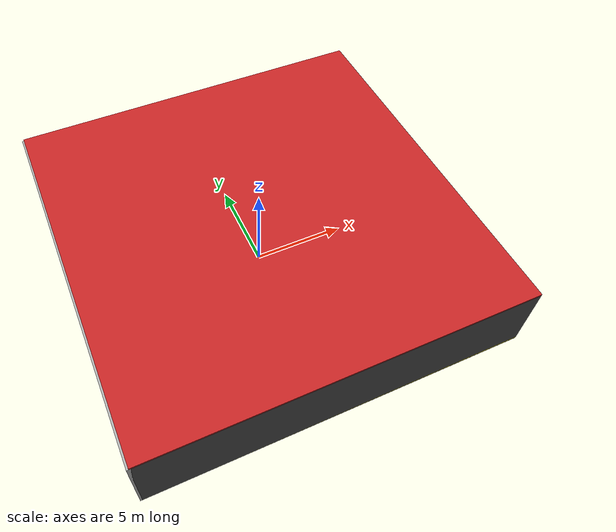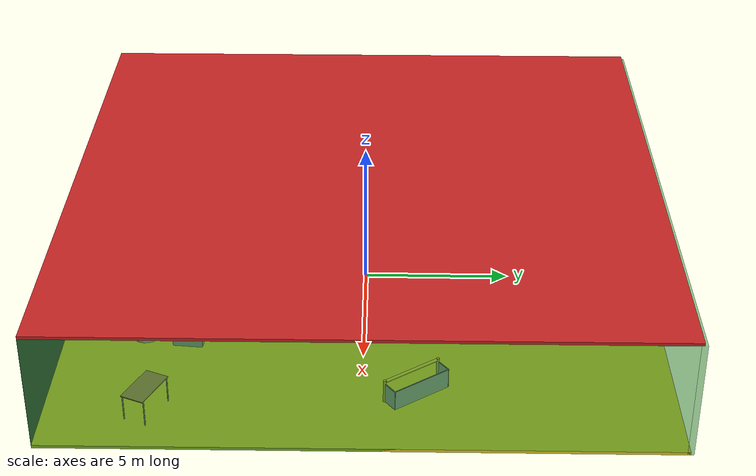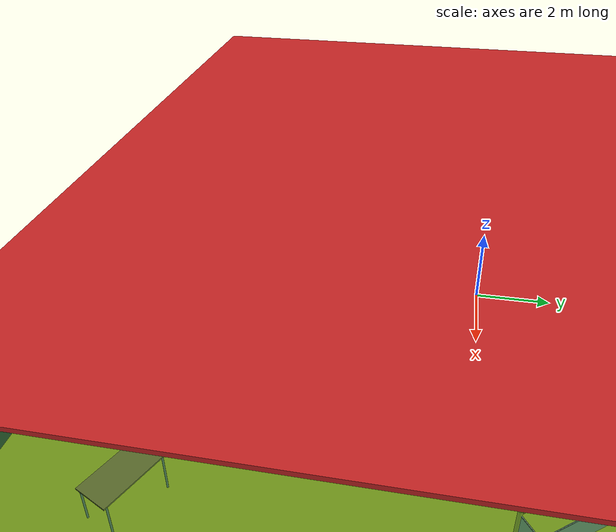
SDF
<sdf version="1.4">
 <world name="default">
  <physics type="ode">
   <max_step_size>0.001</max_step_size>
   <real_time_factor>1</real_time_factor>
   <real_time_update_rate>1000</real_time_update_rate>
   <gravity>0 0 -9.8</gravity>
  </physics>
  <scene><ambient>0.4 0.4 0.4 1</ambient><background>0.7 0.7 0.7 1</background><shadows>1</shadows></scene>
  <model name="Surrounding">
   <static>1</static>
   <link name="Ceiling">
    <collision name="Ceiling_Collision"><geometry><box><size>20 20 0.1</size></box></geometry></collision>
    <visual name="Ceiling_Visual">
     <geometry><box><size>20 20 0.1</size></box></geometry>
     <material>
      <script><uri>file://media/materials/scripts/gazebo.material</uri><name>Gazebo/Red</name></script>
     </material>
    </visual>
    <pose>0 0 4.05 0 0 0</pose>
   </link>
   <link name="Wall_South">
    <collision name="Wall_South_Collision">
     <geometry><box><size>20 0 4</size></box></geometry>
     <pose>0 0 2 0 -0 0</pose>
    </collision>
    <visual name="Wall_South_Visual">
     <pose>0 0 2 0 -0 0</pose>
     <geometry><box><size>20 0 4</size></box></geometry>
     <material>
      <script><uri>file://media/materials/scripts/gazebo.material</uri><name>Gazebo/DarkGrey</name></script>
     </material>
    </visual>
    <velocity_decay><linear>0</linear><angular>0</angular></velocity_decay>
    <pose>0 -10 0 0 -0 0</pose>
   </link>
   <link name="Wall_East">
    <collision name="Wall_21_Collision">
     <geometry><box><size>20 0 4</size></box></geometry>
     <pose>0 0 2 0 -0 0</pose>
    </collision>
    <visual name="Wall_21_Visual">
     <pose>0 0 2 0 -0 0</pose>
     <geometry><box><size>20 0 4</size></box></geometry>
     <material>
      <script><uri>file://media/materials/scripts/gazebo.material</uri><name>Gazebo/GreenTransparent</name></script>
     </material>
    </visual>
    <velocity_decay><linear>0</linear><angular>0</angular></velocity_decay>
    <pose>10 0 0 0 -0 1.5708</pose>
   </link>
   <link name="Wall_North">
    <collision name="Wall_22_Collision">
     <geometry><box><size>20 0.2 4</size></box></geometry>
     <pose>0 0 2 0 -0 0</pose>
    </collision>
    <visual name="Wall_22_Visual">
     <pose>0 0 2 0 -0 0</pose>
     <geometry><box><size>20 0.2 4</size></box></geometry>
     <material>
      <script><uri>file://media/materials/scripts/gazebo.material</uri><name>Gazebo/GreenTransparent</name></script>
     </material>
    </visual>
    <velocity_decay><linear>0</linear><angular>0</angular></velocity_decay>
    <pose>0 10 0 0 -0 0</pose>
   </link>
   <link name="Wall_West">
    <collision name="Wall_23_Collision">
     <geometry><box><size>20 0.2 4</size></box></geometry>
     <pose>0 0 2 0 -0 0</pose>
    </collision>
    <visual name="Wall_23_Visual">
     <pose>0 0 2 0 -0 0</pose>
     <geometry><box><size>20 0.2 4</size></box></geometry>
     <material>
      <script><uri>file://media/materials/scripts/gazebo.material</uri><name>Gazebo/JointAnchor</name></script>
     </material>
    </visual>
    <velocity_decay><linear>0</linear><angular>0</angular></velocity_decay>
    <pose>-10 0 0 0 0 -1.5708</pose>
   </link>
   <link name="Ground_link">
    <collision name="collision">
     <pose>0 0 .05 0 -0 0</pose>
     <geometry><box><size>20 20 0.1</size></box></geometry>
    </collision>
    <visual name="visual">
     <pose>0 0 .05 0 -0 0</pose>
     <geometry><box><size>20 20 0.1</size></box></geometry>
     <material>
      <script><uri>file://media/materials/scripts/gazebo.material</uri><name>Gazebo/YellowGlow</name></script>
     </material>
    </visual>
   </link>
   <static>1</static>
  </model>
  <spherical_coordinates>
   <surface_model>EARTH_WGS84</surface_model>
   <latitude_deg>0</latitude_deg>
   <longitude_deg>0</longitude_deg>
   <elevation>0</elevation>
   <heading_deg>0</heading_deg>
  </spherical_coordinates>
  <light name="lightball_0" type="diffuse">
   <diffuse>0.8 0.8 0.8 1</diffuse>
   <specular>0.2 0.2 0.2 1</specular>
   <attenuation>
    <range>100</range>
    <constant>0.7</constant>
    <linear>0.01</linear>
    <quadratic>0.001</quadratic>
   </attenuation>
   <direction>-0.5 0.1 -0.9</direction>
   <pose>-6.79720930588 5.33181794128 1.15957169867 0 0 0</pose>
  </light>
  <light name="lightball_1" type="diffuse">
   <diffuse>0.8 0.8 0.8 1</diffuse>
   <specular>0.2 0.2 0.2 1</specular>
   <attenuation>
    <range>100</range>
    <constant>0.7</constant>
    <linear>0.01</linear>
    <quadratic>0.001</quadratic>
   </attenuation>
   <direction>-0.5 0.1 -0.9</direction>
   <pose>-8.28407929258 -5.87542470033 2.42017419421 0 0 0</pose>
  </light>
  <light name="lightball_2" type="diffuse">
   <diffuse>0.8 0.8 0.8 1</diffuse>
   <specular>0.2 0.2 0.2 1</specular>
   <attenuation>
    <range>100</range>
    <constant>0.7</constant>
    <linear>0.01</linear>
    <quadratic>0.001</quadratic>
   </attenuation>
   <direction>-0.5 0.1 -0.9</direction>
   <pose>-8.77006984932 -9.13902674772 3.21066853725 0 0 0</pose>
  </light>
  <light name="lightball_3" type="diffuse">
   <diffuse>0.8 0.8 0.8 1</diffuse>
   <specular>0.2 0.2 0.2 1</specular>
   <attenuation>
    <range>100</range>
    <constant>0.7</constant>
    <linear>0.01</linear>
    <quadratic>0.001</quadratic>
   </attenuation>
   <direction>-0.5 0.1 -0.9</direction>
   <pose>1.6142478042 9.20054962843 3.65047041756 0 0 0</pose>
  </light>
  <light name="lightball_4" type="diffuse">
   <diffuse>0.8 0.8 0.8 1</diffuse>
   <specular>0.2 0.2 0.2 1</specular>
   <attenuation>
    <range>100</range>
    <constant>0.7</constant>
    <linear>0.01</linear>
    <quadratic>0.001</quadratic>
   </attenuation>
   <direction>-0.5 0.1 -0.9</direction>
   <pose>-0.597176290371 -5.16559101418 3.07603092713 0 0 0</pose>
  </light>
  <light name="lightball_5" type="diffuse">
   <diffuse>0.8 0.8 0.8 1</diffuse>
   <specular>0.2 0.2 0.2 1</specular>
   <attenuation>
    <range>100</range>
    <constant>0.7</constant>
    <linear>0.01</linear>
    <quadratic>0.001</quadratic>
   </attenuation>
   <direction>-0.5 0.1 -0.9</direction>
   <pose>5.53173008641 6.10474431649 2.22107836298 0 0 0</pose>
  </light>
  <light name="lightball_6" type="diffuse">
   <diffuse>0.8 0.8 0.8 1</diffuse>
   <specular>0.2 0.2 0.2 1</specular>
   <attenuation>
    <range>100</range>
    <constant>0.7</constant>
    <linear>0.01</linear>
    <quadratic>0.001</quadratic>
   </attenuation>
   <direction>-0.5 0.1 -0.9</direction>
   <pose>2.00136711756 0.32100349852 2.19835059378 0 0 0</pose>
  </light>
  <light name="lightball_7" type="diffuse">
   <diffuse>0.8 0.8 0.8 1</diffuse>
   <specular>0.2 0.2 0.2 1</specular>
   <attenuation>
    <range>100</range>
    <constant>0.7</constant>
    <linear>0.01</linear>
    <quadratic>0.001</quadratic>
   </attenuation>
   <direction>-0.5 0.1 -0.9</direction>
   <pose>-3.4273321791 -0.103780655392 1.43552711477 0 0 0</pose>
  </light>
  <light name="lightball_8" type="diffuse">
   <diffuse>0.8 0.8 0.8 1</diffuse>
   <specular>0.2 0.2 0.2 1</specular>
   <attenuation>
    <range>100</range>
    <constant>0.7</constant>
    <linear>0.01</linear>
    <quadratic>0.001</quadratic>
   </attenuation>
   <direction>-0.5 0.1 -0.9</direction>
   <pose>9.09177098486 1.8248342934 2.05266356122 0 0 0</pose>
  </light>
  <include><uri>model://cabinet</uri><pose>-4.07813550053 0.760966386711 0 0 0 0.0731535275218</pose></include>
  <include><uri>model://cabinet</uri><pose>-4.69294172603 4.52287820163 0 0 0 2.47797503853</pose></include>
  <include>
   <uri>model://robocup_3Dsim_goal</uri>
   <pose>-1.50383375396 -4.60163380246 0 0 0 1.40749870327</pose>
  </include>
  <include>
   <uri>model://textured_shapes</uri>
   <pose>4.03928139795 -7.28710766048 0 0 0 3.03915201124</pose>
  </include>
  <include>
   <uri>model://construction_cone</uri>
   <pose>3.75520518151 -1.80667164975 0 0 0 1.27883112008</pose>
  </include>
  <include><uri>model://table</uri><pose>8.17027142907 -6.73723065292 0 0 0 2.71957232347</pose></include>
  <include>
   <uri>model://robocup_3Dsim_goal</uri>
   <pose>6.97236877947 1.56907974261 0 0 0 0.629617733674</pose>
  </include>
 </world>
</sdf>

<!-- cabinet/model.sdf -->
<sdf version="1.5">
  <model name="cabinet">
    <static>true</static>
    <link name="cabinet_bottom_plate">
      <inertial>
        <pose>0 0 -1 0 0 0</pose>
        <inertia>
          <ixx>2.050000</ixx>
          <ixy>0</ixy>
          <ixz>0</ixz>
          <iyy>2.050000</iyy>
          <iyz>0</iyz>
          <izz>2.050000</izz>
        </inertia>
        <mass>25.000000</mass>
      </inertial>
      <collision name="cabinet_bottom_plate_geom">
        <pose>0 0 0.010000 0 0 0</pose>
        <geometry>
          <box>
            <size>0.450000 0.450000 0.020000</size>
          </box>
        </geometry>
      </collision>
      <visual name="cabinet_bottom_plate_geom_visual">
        <pose>0 0 0.010000 0 0 0</pose>
        <geometry>
          <box>
            <size>0.450000 0.450000 0.020000</size>
          </box>
        </geometry>
        <material>
          <script>
            <uri>model://media/materials/scripts/gazebo.material</uri>
            <name>Gazebo/Wood</name>
          </script>
        </material>
      </visual>
      <collision name="cabinet_bottom_plate_geom_cabinet_back_plate">
        <pose>0.235000 0 0.510000 0 0 0</pose>
        <geometry>
          <box>
            <size>0.020000 0.450000 1.020000</size>
          </box>
        </geometry>
      </collision>
      <visual name="cabinet_bottom_plate_geom_cabinet_back_plate_visual">
        <pose>0.235000 0 0.510000 0 0 0</pose>
        <geometry>
          <box>
            <size>0.020000 0.450000 1.020000</size>
          </box>
        </geometry>
        <material>
          <script>
            <uri>model://media/materials/scripts/gazebo.material</uri>
            <name>Gazebo/Wood</name>
          </script>
        </material>
      </visual>
      <collision name="cabinet_bottom_plate_geom_cabinet_left_plate">
        <pose>0 0.235000 0.510000 0 0 0</pose>
        <geometry>
          <box>
            <size>0.450000 0.020000 1.020000</size>
          </box>
        </geometry>
      </collision>
      <visual name="cabinet_bottom_plate_geom_cabinet_left_plate_visual">
        <pose>0 0.235000 0.510000 0 0 0</pose>
        <geometry>
          <box>
            <size>0.450000 0.020000 1.020000</size>
          </box>
        </geometry>
        <material>
          <script>
            <uri>model://media/materials/scripts/gazebo.material</uri>
            <name>Gazebo/Wood</name>
          </script>
        </material>
      </visual>
      <collision name="cabinet_bottom_plate_geom_cabinet_middle_plate">
        <pose>0 0 0.510000 0 0 0</pose>
        <geometry>
          <box>
            <size>0.450000 0.450000 0.020000</size>
          </box>
        </geometry>
      </collision>
      <visual name="cabinet_bottom_plate_geom_cabinet_middle_plate_visual">
        <pose>0 0 0.510000 0 0 0</pose>
        <geometry>
          <box>
            <size>0.450000 0.450000 0.020000</size>
          </box>
        </geometry>
        <material>
          <script>
            <uri>model://media/materials/scripts/gazebo.material</uri>
            <name>Gazebo/Wood</name>
          </script>
        </material>
      </visual>
      <collision name="cabinet_bottom_plate_geom_cabinet_right_plate">
        <pose>0 -0.235000 0.510000 0 0 0</pose>
        <geometry>
          <box>
            <size>0.450000 0.020000 1.020000</size>
          </box>
        </geometry>
      </collision>
      <visual name="cabinet_bottom_plate_geom_cabinet_right_plate_visual">
        <pose>0 -0.235000 0.510000 0 0 0</pose>
        <geometry>
          <box>
            <size>0.450000 0.020000 1.020000</size>
          </box>
        </geometry>
        <material>
          <script>
            <uri>model://media/materials/scripts/gazebo.material</uri>
            <name>Gazebo/Wood</name>
          </script>
        </material>
      </visual>
      <collision name="cabinet_bottom_plate_geom_cabinet_top_plate">
        <pose>0 0 1.010000 0 0 0</pose>
        <geometry>
          <box>
            <size>0.450000 0.450000 0.020000</size>
          </box>
        </geometry>
      </collision>
      <visual name="cabinet_bottom_plate_geom_cabinet_top_plate_visual">
        <pose>0 0 1.010000 0 0 0</pose>
        <geometry>
          <box>
            <size>0.450000 0.450000 0.020000</size>
          </box>
        </geometry>
        <material>
          <script>
            <uri>model://media/materials/scripts/gazebo.material</uri>
            <name>Gazebo/Wood</name>
          </script>
        </material>
      </visual>
    </link>
  </model>
</sdf>

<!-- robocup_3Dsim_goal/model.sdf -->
<sdf version="1.5">
  <model name="robocup_3d_goal">
    <static>true</static>
    <link name="left_post">
      <pose>0 1.05 0.45 0 0 0</pose>
      <collision name="collision">
        <geometry>
          <cylinder>
            <radius>0.05</radius>
            <length>0.9</length>
          </cylinder>
        </geometry>
      </collision>
      <visual name="visual">
        <geometry>
          <cylinder>
            <radius>0.05</radius>
            <length>0.9</length>
          </cylinder>
        </geometry>
        <material>
          <script>
            <uri>file://media/materials/scripts/gazebo.material</uri>
            <name>Gazebo/ZincYellow</name>
          </script>
        </material>
      </visual>
    </link>
    <link name="left_support_horiz_lower">
      <pose>0.30 1.05 0.01 0 0 0</pose>
      <collision name="collision">
        <geometry>
          <box>
            <size>0.50 0.02 0.02</size>
          </box>
        </geometry>
      </collision>
      <visual name="visual">
        <geometry>
          <box>
            <size>0.50 0.02 0.02</size>
          </box>
        </geometry>
        <material>
          <script>
            <uri>file://media/materials/scripts/gazebo.material</uri>
            <name>Gazebo/White</name>
          </script>
        </material>
      </visual>
    </link>
    <link name="left_support_horiz_upper">
      <pose>0.30 1.05 0.79 0 0 0</pose>
      <collision name="collision">
        <geometry>
          <box>
            <size>0.50 0.02 0.02</size>
          </box>
        </geometry>
      </collision>
      <visual name="visual">
        <geometry>
          <box>
            <size>0.50 0.02 0.02</size>
          </box>
        </geometry>
        <material>
          <script>
            <uri>file://media/materials/scripts/gazebo.material</uri>
            <name>Gazebo/White</name>
          </script>
        </material>
      </visual>
    </link>
    <link name="left_support_vertical">
      <pose>0.56 1.05 0.4 0 1.5708 0</pose>
      <collision name="collision">
        <geometry>
          <box>
            <size>0.80 0.02 0.02</size>
          </box>
        </geometry>
      </collision>
      <visual name="visual">
        <geometry>
          <box>
            <size>0.80 0.02 0.02</size>
          </box>
        </geometry>
        <material>
          <script>
            <uri>file://media/materials/scripts/gazebo.material</uri>
            <name>Gazebo/White</name>
          </script>
        </material>
      </visual>
    </link>
    <link name="right_support_horiz_lower">
      <pose>0.30 -1.05 0.01 0 0 0</pose>
      <collision name="collision">
        <geometry>
          <box>
            <size>0.50 0.02 0.02</size>
          </box>
        </geometry>
      </collision>
      <visual name="visual">
        <geometry>
          <box>
            <size>0.50 0.02 0.02</size>
          </box>
        </geometry>
        <material>
          <script>
            <uri>file://media/materials/scripts/gazebo.material</uri>
            <name>Gazebo/White</name>
          </script>
        </material>
      </visual>
    </link>
    <link name="right_support_horiz_upper">
      <pose>0.30 -1.05 0.79 0 0 0</pose>
      <collision name="collision">
        <geometry>
          <box>
            <size>0.50 0.02 0.02</size>
          </box>
        </geometry>
      </collision>
      <visual name="visual">
        <geometry>
          <box>
            <size>0.50 0.02 0.02</size>
          </box>
        </geometry>
        <material>
          <script>
            <uri>file://media/materials/scripts/gazebo.material</uri>
            <name>Gazebo/White</name>
          </script>
        </material>
      </visual>
    </link>
    <link name="right_support_vertical">
      <pose>0.56 -1.05 0.4 0 1.5708 0</pose>
      <collision name="collision">
        <geometry>
          <box>
            <size>0.80 0.02 0.02</size>
          </box>
        </geometry>
      </collision>
      <visual name="visual">
        <geometry>
          <box>
            <size>0.80 0.02 0.02</size>
          </box>
        </geometry>
        <material>
          <script>
            <uri>file://media/materials/scripts/gazebo.material</uri>
            <name>Gazebo/White</name>
          </script>
        </material>
      </visual>
    </link>
    <link name="center_support_horiz_lower">
      <pose>0.56 0 0.01 0 1.5708 0</pose>
      <collision name="collision">
        <geometry>
          <box>
            <size>0.02 2.08 0.02</size>
          </box>
        </geometry>
      </collision>
      <visual name="visual">
        <geometry>
          <box>
            <size>0.02 2.08 0.02</size>
          </box>
        </geometry>
        <material>
          <script>
            <uri>file://media/materials/scripts/gazebo.material</uri>
            <name>Gazebo/White</name>
          </script>
        </material>
      </visual>
    </link>
    <link name="center_support_horiz_upper">
      <pose>0.56 0 0.79 0 1.5708 0</pose>
      <collision name="collision">
        <geometry>
          <box>
            <size>0.02 2.08 0.02</size>
          </box>
        </geometry>
      </collision>
      <visual name="visual">
        <geometry>
          <box>
            <size>0.02 2.08 0.02</size>
          </box>
        </geometry>
        <material>
          <script>
            <uri>file://media/materials/scripts/gazebo.material</uri>
            <name>Gazebo/White</name>
          </script>
        </material>
      </visual>
    </link>
    <link name="right_post">
      <pose>0 -1.05 0.45 0 0 0</pose>
      <collision name="collision">
        <geometry>
          <cylinder>
            <radius>0.05</radius>
            <length>0.9</length>
          </cylinder>
        </geometry>
      </collision>
      <visual name="visual">
        <geometry>
          <cylinder>
            <radius>0.05</radius>
            <length>0.9</length>
          </cylinder>
        </geometry>
        <material>
          <script>
            <uri>file://media/materials/scripts/gazebo.material</uri>
            <name>Gazebo/ZincYellow</name>
          </script>
        </material>
      </visual>
    </link>
    <link name="crossbar">
      <pose>0 0 0.85 1.57 1.57 0</pose>
      <collision name="collision">
        <geometry>
          <cylinder>
            <radius>0.05</radius>
            <length>2.0</length>
          </cylinder>
        </geometry>
      </collision>
      <visual name="visual">
        <geometry>
          <cylinder>
            <radius>0.05</radius>
            <length>2.0</length>
          </cylinder>
        </geometry>
        <material>
          <script>
            <uri>file://media/materials/scripts/gazebo.material</uri>
            <name>Gazebo/ZincYellow</name>
          </script>
        </material>
      </visual>
    </link>
    <link name="center_net">
      <pose>0.56 0 0.40 0 0 0</pose>
      <collision name="collision">
        <geometry>
          <box>
            <size>0.01 2.1 0.80</size>
          </box>
        </geometry>
      </collision>
      <visual name="visual">
        <geometry>
          <box>
            <size>0.01 2.1 0.80</size>
          </box>
        </geometry>
        <material>
          <script>
            <uri>model://../model_source/models/robocup09_spl_field/materials/scripts/</uri>
            <uri>model://../model_source/models/robocup09_spl_field/materials/textures/</uri>
            <name>RoboCup/Net</name>
          </script>
        </material>
      </visual>
    </link>
    <link name="left_net">
      <pose>0.30 1.05 0.40 0 0 0</pose>
      <collision name="collision">
        <geometry>
          <box>
            <size>0.50 0.01 0.76</size>
          </box>
        </geometry>
      </collision>
      <visual name="visual">
        <geometry>
          <box>
            <size>0.50 0.01 0.76</size>
          </box>
        </geometry>
        <material>
          <script>
            <uri>model://../model_source/models/robocup09_spl_field/materials/scripts/</uri>
            <uri>model://../model_source/models/robocup09_spl_field/materials/textures/</uri>
            <name>RoboCup/Net</name>
          </script>
        </material>
      </visual>
    </link>
    <link name="right_net">
      <pose>0.30 -1.05 0.40 0 0 0</pose>
      <collision name="collision">
        <geometry>
          <box>
            <size>0.50 0.01 0.76</size>
          </box>
        </geometry>
      </collision>
      <visual name="visual">
        <geometry>
          <box>
            <size>0.50 0.01 0.76</size>
          </box>
        </geometry>
        <material>
          <script>
            <uri>model://../model_source/models/robocup09_spl_field/materials/scripts/</uri>
            <uri>model://../model_source/models/robocup09_spl_field/materials/textures/</uri>
            <name>RoboCup/Net</name>
          </script>
        </material>
      </visual>
    </link>
  </model>
</sdf>

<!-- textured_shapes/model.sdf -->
<sdf version="1.6">
  <model name="textured_shapes">
    <pose>0 0 0.5 0 0 0</pose>
    <link name="box">
      <pose>0 -1.5 0 0 0 0</pose>
      <collision name="collision">
        <geometry>
          <box>
            <size>1 1 1</size>
          </box>
        </geometry>
      </collision>
      <visual name="visual">
        <geometry>
          <box>
            <size>1 1 1</size>
          </box>
        </geometry>
        <material>
          <script>
            <uri>model://../model_source/models/textured_shapes/materials/scripts</uri>
            <uri>model://../model_source/models/textured_shapes/materials/textures</uri>
            <name>TexturedShape/Squares</name>
          </script>
        </material>
      </visual>
    </link>
    <link name="sphere">
      <collision name="collision">
        <geometry>
          <sphere>
            <radius>0.5</radius>
          </sphere>
        </geometry>
      </collision>
      <visual name="visual">
        <geometry>
          <sphere>
            <radius>0.5</radius>
          </sphere>
        </geometry>
        <material>
          <script>
            <uri>model://../model_source/models/textured_shapes/materials/scripts</uri>
            <uri>model://../model_source/models/textured_shapes/materials/textures</uri>
            <name>TexturedShape/Squares</name>
          </script>
        </material>
      </visual>
    </link>
    <link name="cylinder">
      <pose>0 1.5 0 0 0 0</pose>
      <collision name="collision">
        <geometry>
          <cylinder>
            <radius>0.5</radius>
            <length>1</length>
          </cylinder>
        </geometry>
      </collision>
      <visual name="visual">
        <geometry>
          <cylinder>
            <radius>0.5</radius>
            <length>1</length>
          </cylinder>
        </geometry>
        <material>
          <script>
            <uri>model://../model_source/models/textured_shapes/materials/scripts</uri>
            <uri>model://../model_source/models/textured_shapes/materials/textures</uri>
            <name>TexturedShape/Squares</name>
          </script>
        </material>
      </visual>
    </link>
  </model>
</sdf>

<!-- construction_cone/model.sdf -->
<sdf version="1.5">
  <model name="Construction Cone">
    <link name="link">
      <collision name="collision">
        <geometry>
          <mesh>
            <scale>10 10 10</scale>
            <uri>file://isr-testbed/construction_cone/meshes/construction_cone.dae</uri>
          </mesh>
        </geometry>
      </collision>
      <visual name="visual">
        <geometry>
          <mesh>
            <scale>10 10 10</scale>
            <uri>file://isr-testbed/construction_cone/meshes/construction_cone.dae</uri>
          </mesh>
        </geometry>
      </visual>
    </link>
  </model>
</sdf>

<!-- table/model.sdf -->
<sdf version="1.5">
  <model name="table">
    <static>true</static>
    <link name="link">
      <collision name="surface">
        <pose>0 0 1.0 0 0 0</pose>
        <geometry>
          <box>
            <size>1.5 0.8 0.03</size>
          </box>
        </geometry>
        <surface>
          <friction>
            <ode>
              <mu>0.6</mu>
              <mu2>0.6</mu2>
            </ode>
          </friction>
        </surface>
      </collision>
      <visual name="visual1">
        <pose>0 0 1.0 0 0 0</pose>
        <geometry>
          <box>
            <size>1.5 0.8 0.03</size>
          </box>
        </geometry>
        <material>
          <script>
            <uri>model://media/materials/scripts/gazebo.material</uri>
            <name>Gazebo/Wood</name>
          </script>
        </material>
      </visual>
      <collision name="front_left_leg">
        <pose>0.68 0.38 0.5 0 0 0</pose>
        <geometry>
          <cylinder>
            <radius>0.02</radius>
            <length>1.0</length>
          </cylinder>
        </geometry>
      </collision>
      <visual name="front_left_leg">
        <pose>0.68 0.38 0.5 0 0 0</pose>
        <geometry>
          <cylinder>
            <radius>0.02</radius>
            <length>1.0</length>
          </cylinder>
        </geometry>
        <material>
          <script>
            <uri>model://media/materials/scripts/gazebo.material</uri>
            <name>Gazebo/Grey</name>
          </script>
        </material>
      </visual>
      <collision name="front_right_leg">
        <pose>0.68 -0.38 0.5 0 0 0</pose>
        <geometry>
          <cylinder>
            <radius>0.02</radius>
            <length>1.0</length>
          </cylinder>
        </geometry>
      </collision>
      <visual name="front_right_leg">
        <pose>0.68 -0.38 0.5 0 0 0</pose>
        <geometry>
          <cylinder>
            <radius>0.02</radius>
            <length>1.0</length>
          </cylinder>
        </geometry>
        <material>
          <script>
            <uri>model://media/materials/scripts/gazebo.material</uri>
            <name>Gazebo/Grey</name>
          </script>
        </material>
      </visual>
      <collision name="back_right_leg">
        <pose>-0.68 -0.38 0.5 0 0 0</pose>
        <geometry>
          <cylinder>
            <radius>0.02</radius>
            <length>1.0</length>
          </cylinder>
        </geometry>
      </collision>
      <visual name="back_right_leg">
        <pose>-0.68 -0.38 0.5 0 0 0</pose>
        <geometry>
          <cylinder>
            <radius>0.02</radius>
            <length>1.0</length>
          </cylinder>
        </geometry>
        <material>
          <script>
            <uri>model://media/materials/scripts/gazebo.material</uri>
            <name>Gazebo/Grey</name>
          </script>
        </material>
      </visual>
      <collision name="back_left_leg">
        <pose>-0.68 0.38 0.5 0 0 0</pose>
        <geometry>
          <cylinder>
            <radius>0.02</radius>
            <length>1.0</length>
          </cylinder>
        </geometry>
      </collision>
      <visual name="back_left_leg">
        <pose>-0.68 0.38 0.5 0 0 0</pose>
        <geometry>
          <cylinder>
            <radius>0.02</radius>
            <length>1.0</length>
          </cylinder>
        </geometry>
        <material>
          <script>
            <uri>model://media/materials/scripts/gazebo.material</uri>
            <name>Gazebo/Grey</name>
          </script>
        </material>
      </visual>
    </link>
  </model>
</sdf>
